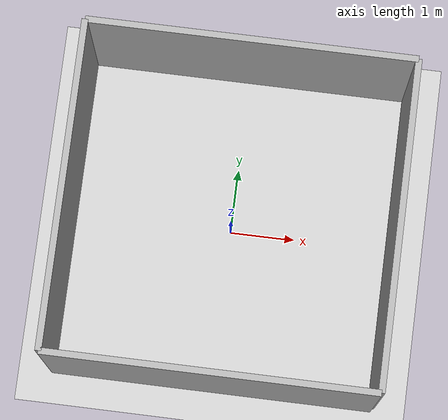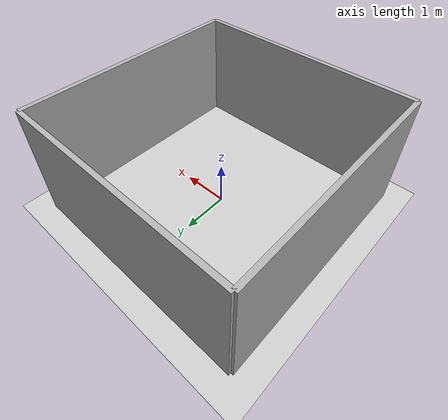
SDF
<?xml version="1.0" ?>
<sdf version="1.6">
  <world name="my_room_world">

    <!-- Include default physics and GUI -->
    <include>
      <uri>model://sun</uri>
    </include>

    <include>
      <uri>model://ground_plane</uri>
    </include>

    <!-- 房间四面墙体 -->
    <model name="room_walls">
      <static>true</static>
      <link name="wall_link">

        <!-- 北墙 -->
        <visual name="north_wall_visual">
          <geometry>
            <box>
              <size>5 0.1 2.5</size>
            </box>
          </geometry>
          <pose>0 2.5 1.25 0 0 0</pose>
          <material>
            <ambient>0.7 0.7 0.7 1</ambient>
          </material>
        </visual>

        <!-- 南墙 -->
        <visual name="south_wall_visual">
          <geometry>
            <box>
              <size>5 0.1 2.5</size>
            </box>
          </geometry>
          <pose>0 -2.5 1.25 0 0 0</pose>
          <material>
            <ambient>0.7 0.7 0.7 1</ambient>
          </material>
        </visual>

        <!-- 东墙 -->
        <visual name="east_wall_visual">
          <geometry>
            <box>
              <size>0.1 5 2.5</size>
            </box>
          </geometry>
          <pose>2.5 0 1.25 0 0 0</pose>
          <material>
            <ambient>0.7 0.7 0.7 1</ambient>
          </material>
        </visual>

        <!-- 西墙 -->
        <visual name="west_wall_visual">
          <geometry>
            <box>
              <size>0.1 5 2.5</size>
            </box>
          </geometry>
          <pose>-2.5 0 1.25 0 0 0</pose>
          <material>
            <ambient>0.7 0.7 0.7 1</ambient>
          </material>
        </visual>

      </link>
    </model>

    <!-- 灯光 -->
    <light name="room_light" type="point">
      <pose>0 0 5 0 0 0</pose>
      <diffuse>1 1 1 1</diffuse>
      <specular>0.1 0.1 0.1 1</specular>
      <attenuation>
        <range>20</range>
        <constant>0.5</constant>
        <linear>0.01</linear>
        <quadratic>0.001</quadratic>
      </attenuation>
      <cast_shadows>true</cast_shadows>
    </light>

  </world>
</sdf>
